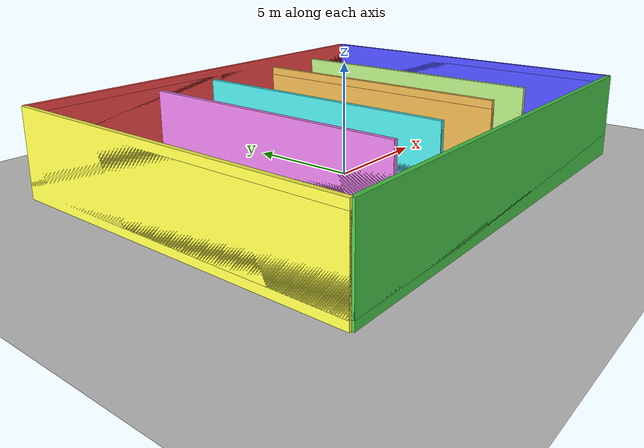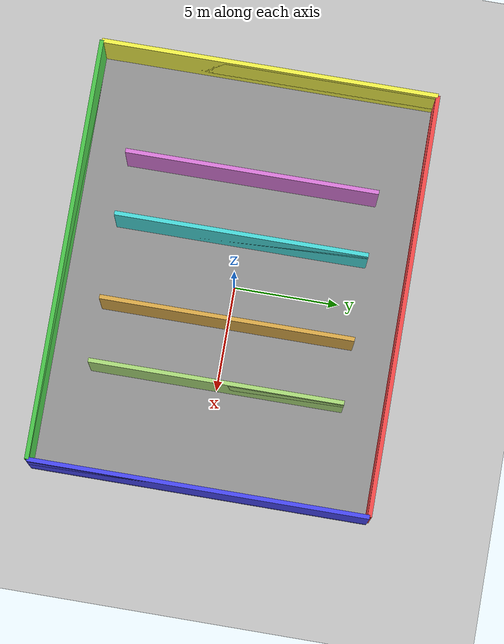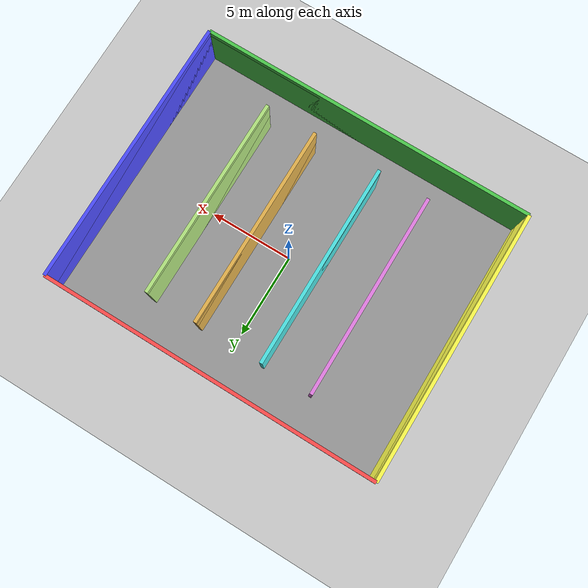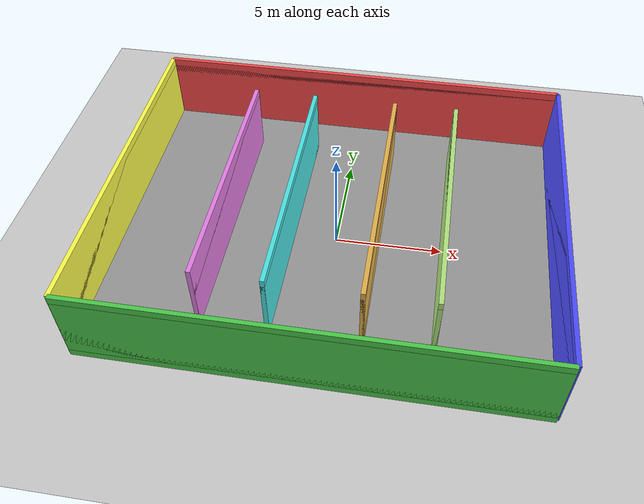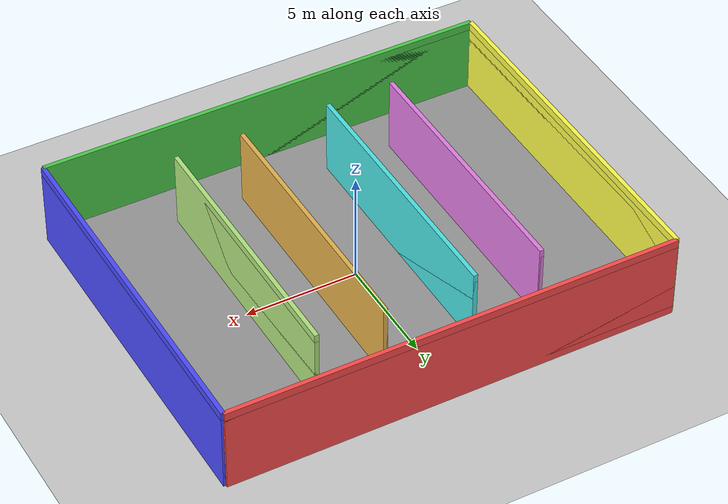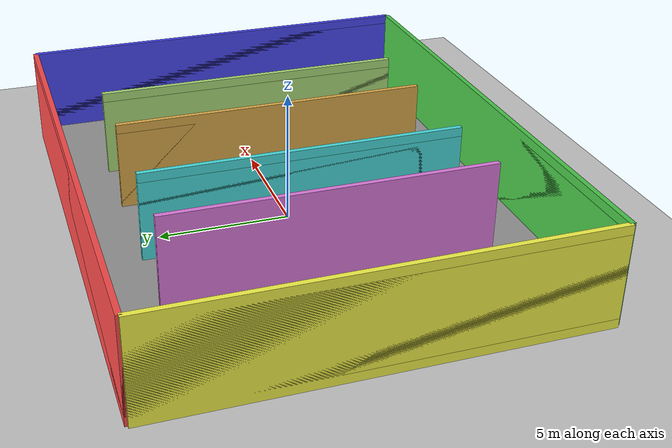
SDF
<?xml version="1.0" ?>
<sdf version="1.7">

    <world name="beetlebot_track_world">

        <physics name="1ms" type="ignored">
            <max_step_size>0.001</max_step_size>
            <real_time_factor>1.0</real_time_factor>
        </physics>

        <plugin
            filename="gz-sim-physics-system"
            name="gz::sim::systems::Physics">
        </plugin>

        <plugin
            filename="gz-sim-user-commands-system"
            name="gz::sim::systems::UserCommands">
        </plugin>

        <plugin
            filename="gz-sim-scene-broadcaster-system"
            name="gz::sim::systems::SceneBroadcaster">
        </plugin>

    <!-- define custom gui plugins to the world -->

    <!-- add robot sensors plugins to the world -->

        <!-- add imu plugin to the world -->
        <plugin filename="gz-sim-imu-system"
            name="gz::sim::systems::Imu">
        </plugin>

         <!-- add lidar plugin to the world -->
        <plugin
            filename="gz-sim-sensors-system"
            name="gz::sim::systems::Sensors">
            <render_engine>ogre2</render_engine>
        </plugin>

        <light type="directional" name="sun">
            <cast_shadows>true</cast_shadows>
            <pose>0 0 10 0 0 0</pose>
            <diffuse>0.8 0.8 0.8 1</diffuse>
            <specular>0.2 0.2 0.2 1</specular>
            <attenuation>
                <range>1000</range>
                <constant>0.9</constant>
                <linear>0.01</linear>
                <quadratic>0.001</quadratic>
            </attenuation>
            <direction>-0.5 0.1 -0.9</direction>
        </light>

        <model name="ground_plane">
            <static>true</static>
            <link name="link">
                <collision name="collision">
                    <geometry>
                        <plane>
                            <normal>0 0 1</normal>
                            <size>100 100</size>
                        </plane>
                    </geometry>
                    <surface>
                        <friction>
                            <ode>
                                <mu>100</mu>
                                <mu2>50</mu2>
                            </ode>
                        </friction>
                    </surface>
                </collision>
                <visual name="visual">
                    <cast_shadows>false</cast_shadows>
                    <geometry>
                        <plane>
                            <normal>0 0 1</normal>
                            <size>100 100</size>
                        </plane>
                    </geometry>
                    <material>
                        <script>
                            <uri>file://media/materials/scripts/gazebo.material</uri>
                            <name>Gazebo/Grey</name>
                        </script>
                    </material>
                </visual>
            </link>
        </model>

        <!--  movment plugins to control robot using gzsim teleop with keyboard (No ROS) -->

        <!-- Moving Forward-->
        <plugin filename="gz-sim-triggered-publisher-system"
                name="gz::sim::systems::TriggeredPublisher">
            <input type="gz.msgs.Int32" topic="/keyboard/keypress">
                <match field="data">16777235</match>
            </input>
            <output type="gz.msgs.Twist" topic="/cmd_vel">
                linear: {x: 0.5}, angular: {z: 0.0}
            </output>
        </plugin>

        <!-- Moving Backward-->
        <plugin filename="gz-sim-triggered-publisher-system"
                name="gz::sim::systems::TriggeredPublisher">
            <input type="gz.msgs.Int32" topic="/keyboard/keypress">
                <match field="data">16777237</match>
            </input>
            <output type="gz.msgs.Twist" topic="/cmd_vel">
                linear: {x: -0.5}, angular: {z: 0.0}
            </output>
        </plugin>

        <!-- Moving Right-->
        <plugin filename="gz-sim-triggered-publisher-system"
                name="gz::sim::systems::TriggeredPublisher">
            <input type="gz.msgs.Int32" topic="/keyboard/keypress">
                <match field="data">16777236</match>
            </input>
            <output type="gz.msgs.Twist" topic="/cmd_vel">
                linear: {x: 0.0}, angular: {z: -0.5}
            </output>
        </plugin>

        <!-- Moving Left-->
        <plugin filename="gz-sim-triggered-publisher-system"
                name="gz::sim::systems::TriggeredPublisher">
            <input type="gz.msgs.Int32" topic="/keyboard/keypress">
                <match field="data">16777234</match>
            </input>
            <output type="gz.msgs.Twist" topic="/cmd_vel">
                linear: {x: 0.0}, angular: {z: 0.5}
            </output>
        </plugin>

        <!-- Stop the robot-->
        <plugin filename="gz-sim-triggered-publisher-system"
                name="gz::sim::systems::TriggeredPublisher">
            <input type="gz.msgs.Int32" topic="/keyboard/keypress">
                <match field="data">75</match>
            </input>
            <output type="gz.msgs.Twist" topic="/cmd_vel">
                linear: {x: 0.0}, angular: {z: 0.0}
            </output>
        </plugin>

        <model name="Track2">
            <static>1</static>
            <include>
                <pose>0 0 0.00 0.0 0.0 0.0</pose>
                <uri>package://beetlebot_gazebo/models/track2/model.sdf</uri>
            </include>
        </model>

        <!-- Include a "beetlebot" robot inside beetlebot model as nested model  -->

        <model name="beetlebot">

            <pose>0 0 0.35 0 0 0</pose>
            <include merge="true" >  <!-- merge="true" to merge the nested model with the parent model -->
                <uri>package://beetlebot_description/models/beetlebot/model.sdf</uri>
            </include>

        </model>

    </world>
</sdf>

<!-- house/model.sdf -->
<sdf version="1.6">
  <model name="large_building">
    <!-- Main building structure - now larger -->
    <link name="building_base">
      <!-- Floor (now 20x16 meters) -->
      <collision name="floor_collision">
        <geometry>
          <box>
            <size>20 16 0.2</size>
          </box>
        </geometry>
      </collision>
      <visual name="floor_visual">
        <geometry>
          <box>
            <size>20 16 0.2</size>
          </box>
        </geometry>
        <material>
          <ambient>0.5 0.5 0.5 1</ambient>
          <diffuse>0.6 0.6 0.6 1</diffuse>
          <specular>0.1 0.1 0.1 1</specular>
        </material>
      </visual>

      <!-- Outer walls (taller at 3.5m) with different colors -->
      <collision name="north_wall_collision">
        <geometry>
          <box>
            <size>20 0.2 3.5</size>
          </box>
        </geometry>
        <pose>0 8 1.75 0 0 0</pose>
      </collision>
      <visual name="north_wall_visual">
        <geometry>
          <box>
            <size>20 0.2 3.5</size>
          </box>
        </geometry>
        <pose>0 8 1.75 0 0 0</pose>
        <material>
          <ambient>0.9 0.2 0.2 1</ambient>  <!-- Red -->
          <diffuse>1.0 0.3 0.3 1</diffuse>
          <specular>0.1 0.1 0.1 1</specular>
        </material>
      </visual>

      <collision name="south_wall_collision">
        <geometry>
          <box>
            <size>20 0.2 3.5</size>
          </box>
        </geometry>
        <pose>0 -8 1.75 0 0 0</pose>
      </collision>
      <visual name="south_wall_visual">
        <geometry>
          <box>
            <size>20 0.2 3.5</size>
          </box>
        </geometry>
        <pose>0 -8 1.75 0 0 0</pose>
        <material>
          <ambient>0.2 0.7 0.2 1</ambient>  <!-- Green -->
          <diffuse>0.3 0.8 0.3 1</diffuse>
          <specular>0.1 0.1 0.1 1</specular>
        </material>
      </visual>

      <collision name="east_wall_collision">
        <geometry>
          <box>
            <size>0.2 16 3.5</size>
          </box>
        </geometry>
        <pose>10 0 1.75 0 0 0</pose>
      </collision>
      <visual name="east_wall_visual">
        <geometry>
          <box>
            <size>0.2 16 3.5</size>
          </box>
        </geometry>
        <pose>10 0 1.75 0 0 0</pose>
        <material>
          <ambient>0.2 0.2 0.9 1</ambient>  <!-- Blue -->
          <diffuse>0.3 0.3 1.0 1</diffuse>
          <specular>0.1 0.1 0.1 1</specular>
        </material>
      </visual>

      <collision name="west_wall_collision">
        <geometry>
          <box>
            <size>0.2 16 3.5</size>
          </box>
        </geometry>
        <pose>-10 0 1.75 0 0 0</pose>
      </collision>
      <visual name="west_wall_visual">
        <geometry>
          <box>
            <size>0.2 16 3.5</size>
          </box>
        </geometry>
        <pose>-10 0 1.75 0 0 0</pose>
        <material>
          <ambient>0.9 0.9 0.2 1</ambient>  <!-- Yellow -->
          <diffuse>1.0 1.0 0.3 1</diffuse>
          <specular>0.1 0.1 0.1 1</specular>
        </material>
      </visual>

      <!-- Internal walls dividing the rooms -->
      <!-- Vertical dividers -->
      <collision name="divider1_collision">
        <geometry>
          <box>
            <size>0.2 12 3.5</size>
          </box>
        </geometry>
        <pose>-5 0 1.75 0 0 0</pose>
      </collision>
      <visual name="divider1_visual">
        <geometry>
          <box>
            <size>0.2 12 3.5</size>
          </box>
        </geometry>
        <pose>-5 0 1.75 0 0 0</pose>
        <material>
          <ambient>0.8 0.4 0.8 1</ambient>  <!-- Purple -->
          <diffuse>0.9 0.5 0.9 1</diffuse>
          <specular>0.1 0.1 0.1 1</specular>
        </material>
      </visual>

      <collision name="divider2_collision">
        <geometry>
          <box>
            <size>0.2 12 3.5</size>
          </box>
        </geometry>
        <pose>-2 0 1.75 0 0 0</pose>
      </collision>
      <visual name="divider2_visual">
        <geometry>
          <box>
            <size>0.2 12 3.5</size>
          </box>
        </geometry>
        <pose>-2 0 1.75 0 0 0</pose>
        <material>
          <ambient>0.2 0.8 0.8 1</ambient>  <!-- Cyan -->
          <diffuse>0.3 0.9 0.9 1</diffuse>
          <specular>0.1 0.1 0.1 1</specular>
        </material>
      </visual>

      <collision name="divider22_collision">
        <geometry>
          <box>
            <size>0.2 12 3.5</size>
          </box>
        </geometry>
        <pose>2 0 1.75 0 0 0</pose>
      </collision>
      <visual name="divider22_visual">
        <geometry>
          <box>
            <size>0.2 12 3.5</size>
          </box>
        </geometry>
        <pose>2 0 1.75 0 0 0</pose>
        <material>
          <ambient>0.8 0.6 0.2 1</ambient>  <!-- Orange -->
          <diffuse>0.9 0.7 0.3 1</diffuse>
          <specular>0.1 0.1 0.1 1</specular>
        </material>
      </visual>

      <collision name="divider3_collision">
        <geometry>
          <box>
            <size>0.2 12 3.5</size>
          </box>
        </geometry>
        <pose>5 0 1.75 0 0 0</pose>
      </collision>
      <visual name="divider3_visual">
        <geometry>
          <box>
            <size>0.2 12 3.5</size>
          </box>
        </geometry>
        <pose>5 0 1.75 0 0 0</pose>
        <material>
          <ambient>0.6 0.8 0.4 1</ambient>  <!-- Lime green -->
          <diffuse>0.7 0.9 0.5 1</diffuse>
          <specular>0.1 0.1 0.1 1</specular>
        </material>
      </visual>

    </link>

    <!-- Static model (won't move) -->
    <static>true</static>
  </model>
</sdf>
